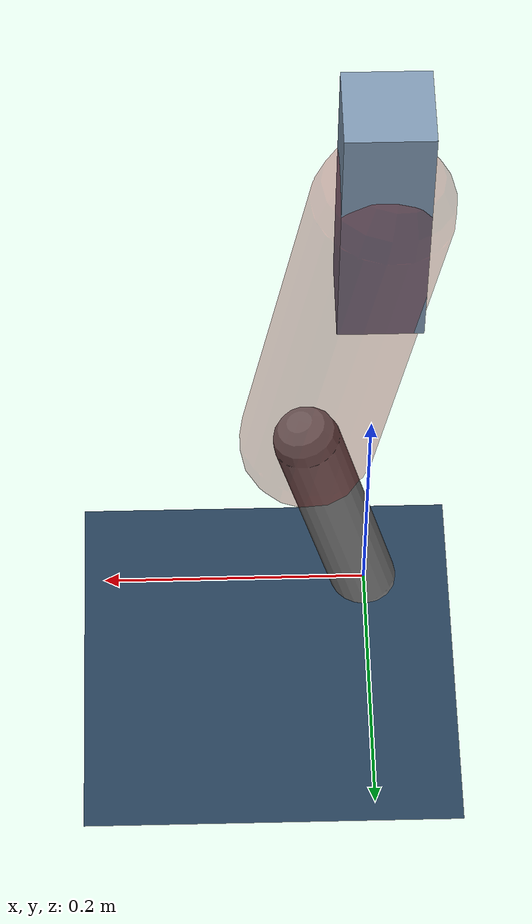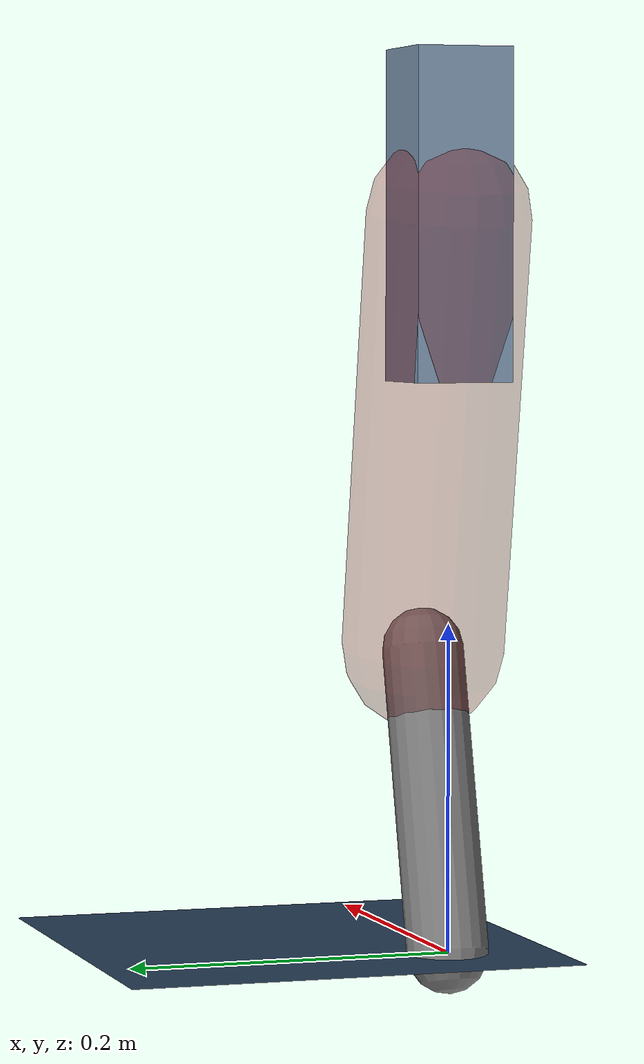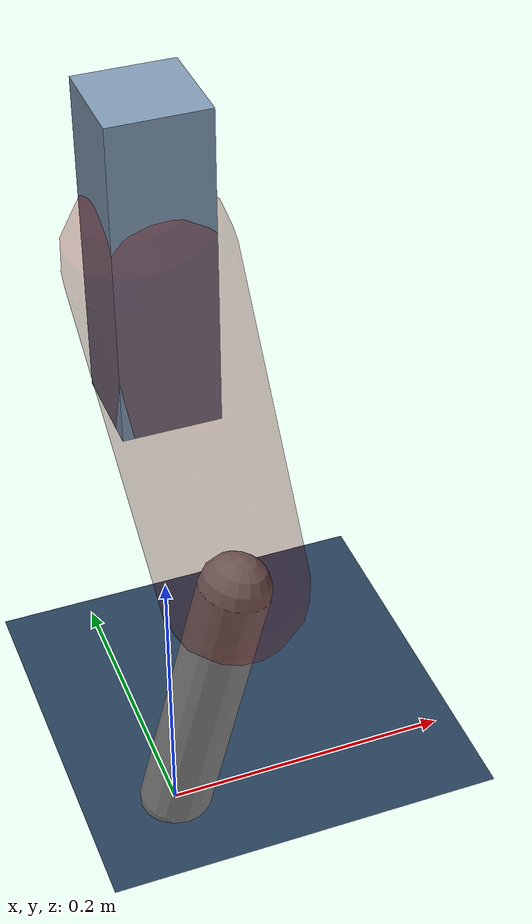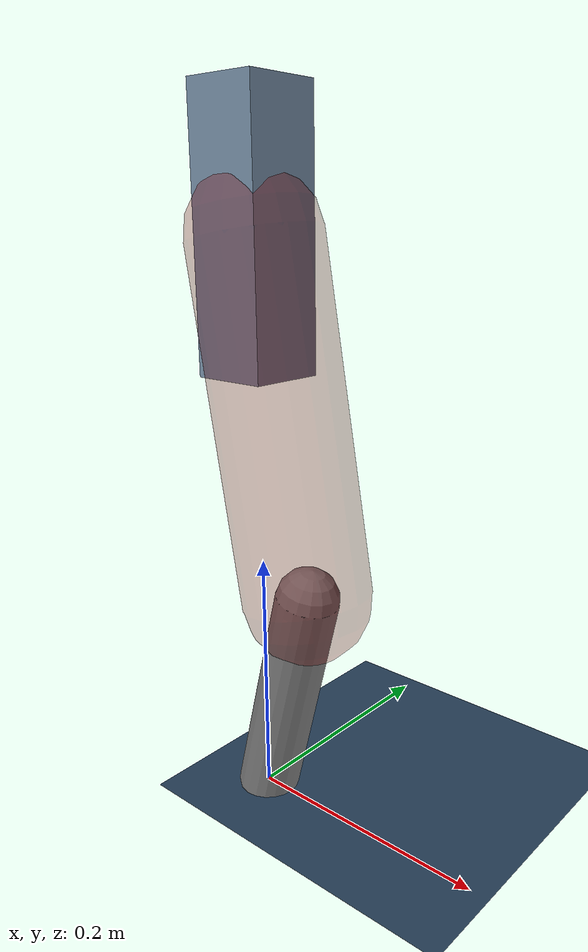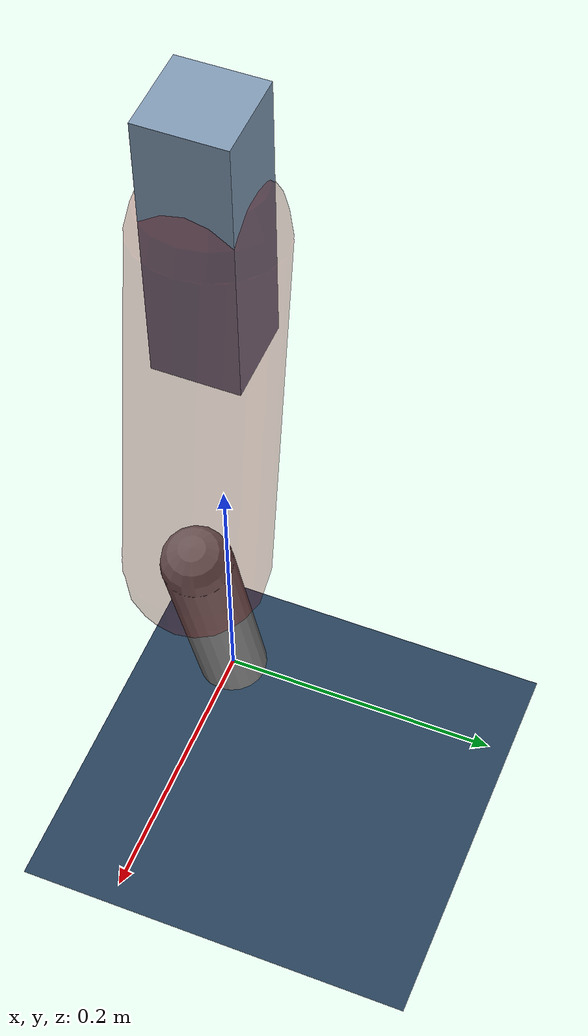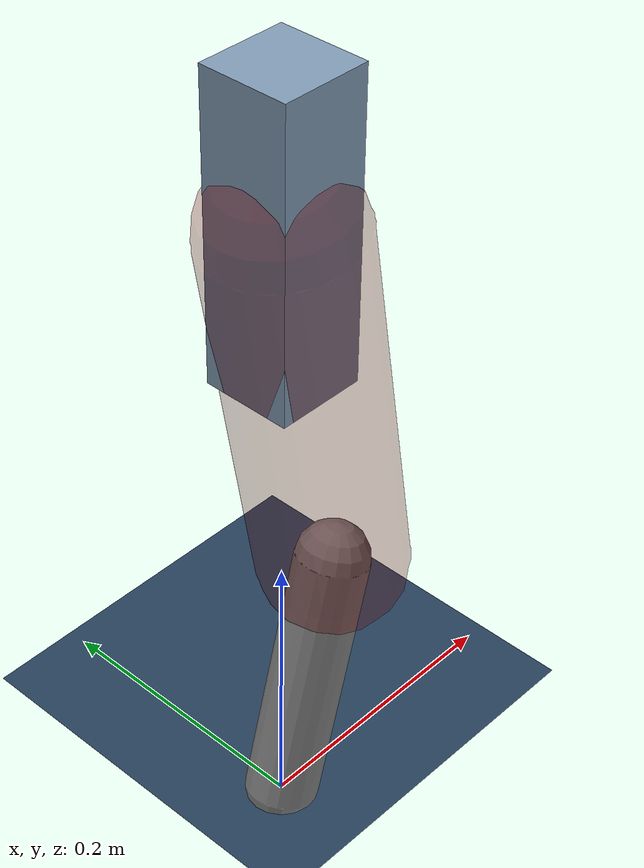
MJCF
<mujoco model="Hopper2D">
	<compiler inertiafromgeom="true" angle="radian" />
	<option timestep="0.001" integrator="implicit" cone="elliptic" solver="Newton" tolerance="1e-10" />

	<default>
		<geom contype="1" conaffinity="1" condim="3" friction="2 0.005 0.0001" solref="0.005 1" />
		<joint limited="true" damping="0.1" />
	</default>

	<asset>
		<texture name="skybox" type="skybox" builtin="gradient" rgb1=".4 .6 .8" rgb2="0 0 0" width="800" height="800" />
		<texture name="grid" type="2d" builtin="checker" rgb1=".1 .2 .3" rgb2=".2 .3 .4" width="300" height="300" mark="edge" markrgb=".2 .3 .4" />
		<material name="ground" texture="grid" texrepeat="1 1" texuniform="true" reflectance="0.1" />
		<material name="leg" rgba="0.5 0.6 0.7 1" />
	</asset>

	<worldbody>

		<geom name="floor" type="plane" size="5 5 0.25" material="ground" />

		<light directional="false" diffuse="0.8 0.8 0.8" specular="0.3 0.3 0.3" pos="0 0 2" dir="0 0 -1" />
		<light mode="targetbodycom" target="base" directional="false" diffuse="0.8 0.8 0.8" specular="0.3 0.3 0.3" pos="0 0 2" dir="0 0 -1" />

		<camera name="fixed" pos="0 -2 1" xyaxes="1 0 0 0 0 1" />
		<camera name="tracking" mode="trackcom" pos="0 -3 1" />

		<body name="root" pos="0 0 0.44670832338339417">
			<joint name="slide_x" type="slide" axis="1 0 0" range="-100 100" />
			<joint name="slide_z" type="slide" axis="0 0 1" range="0 10" />

			<body name="base" pos="0 0 0">
				<geom name="torso" type="box" size="0.03 0.03 0.1" mass="5.617" material="leg" />

				<body name="link1" pos="0 0 0" euler="0 1.3962661099337694 0">
					<joint type="hinge" axis="0 -1 0" pos="0 0 0" name="hinge1" limited="true" range="-3.14 3.14" stiffness="0" damping="0.1" />
					<geom name="thigh" type="capsule" fromto="0 0 0 0.26909355198449214 0 0" size="0.05" rgba="0.5 0 0 0.3" mass="0.9062525903581288" />

					<body name="link2" pos="0.26909355198449214 0 0" euler="0 0.4262373013991609 0">
						<joint type="hinge" axis="0 -1 0" pos="0 0 0" name="hinge2" limited="true" range="-3.14 3.14" stiffness="0" damping="0.1" />
						<geom name="shank" type="capsule" fromto="0 0 0 0.18761477139890206 0 0" size="0.025" mass="0.39039181711912163" />

					</body>
				</body>
			</body>
		</body>
	</worldbody>

	<actuator>
		<motor name="torque1" joint="hinge1" ctrlrange="-333.9747922275759 333.9747922275759" ctrllimited="true" gear="1" />
		<motor name="torque2" joint="hinge2" ctrlrange="-222.83608179599216 222.83608179599216" ctrllimited="true" gear="1" />
	</actuator>
</mujoco>
